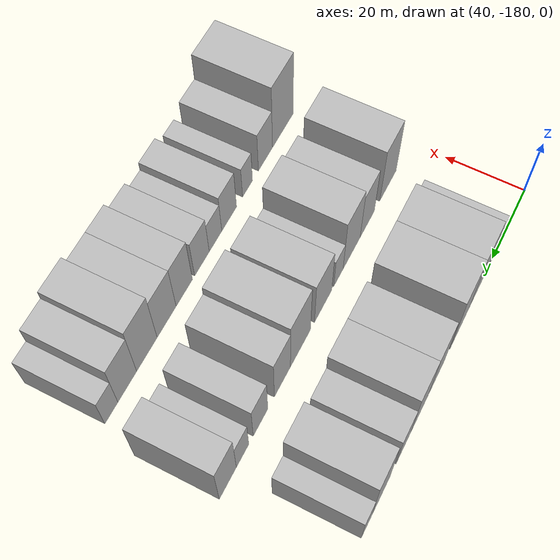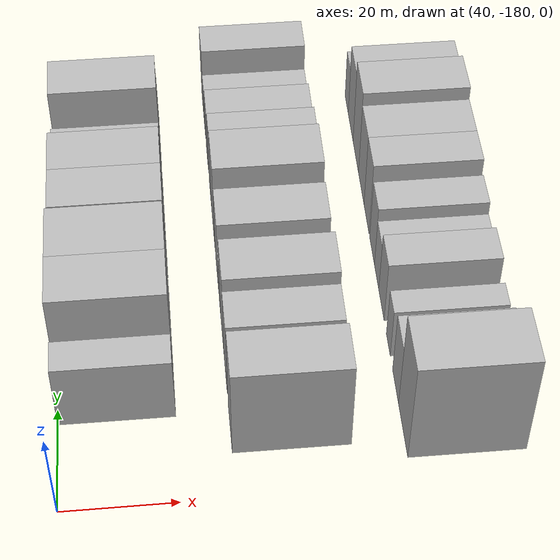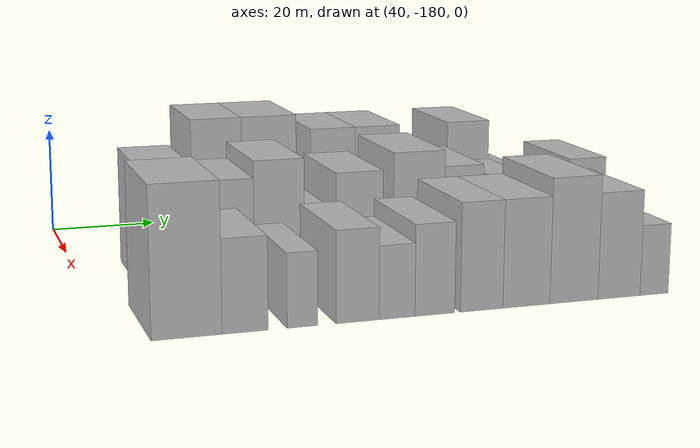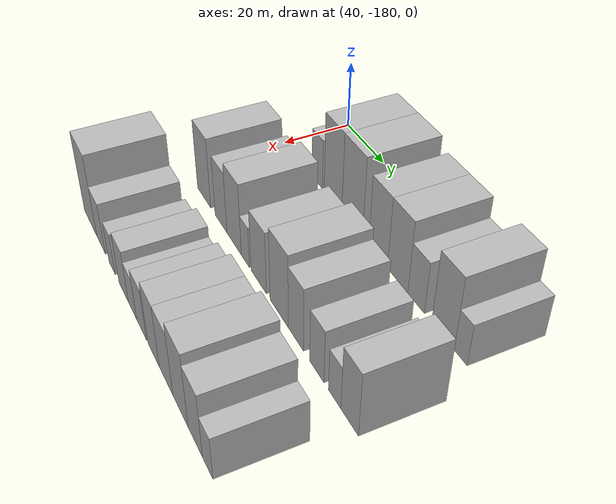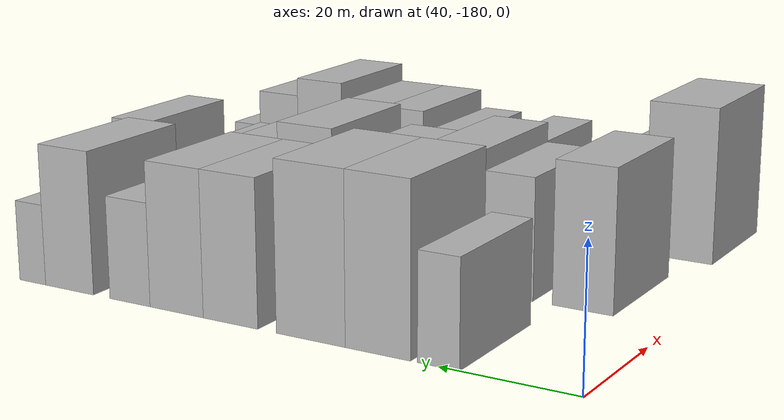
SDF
<sdf version="1.6">
 <world name="default">
  <model name="building_21">
   <static>1</static>
   <pose>50.0000 -159.9730 0 0.000000 0.000000 0.000000</pose>
   <link name="link">
    <pose>0 0 7.50 0 0 0</pose>
    <collision name="collision"><geometry><box><size>20.0000 6.0848 15.0000</size></box></geometry></collision>
    <visual name="visual">
     <cast_shadows>0</cast_shadows>
     <geometry><box><size>20.0000 6.0848 15.0000</size></box></geometry>
     <material>
      <script>
       <uri>model://HANNAS_wall/materials/scripts</uri>
       <uri>model://HANNAS_wall/materials/textures</uri>
       <name>vrc/HANNAS_wall</name>
      </script>
     </material>
    </visual>
   </link>
  </model>
  <model name="building_22">
   <static>1</static>
   <pose>50.0000 -151.0170 0 0.000000 0.000000 0.000000</pose>
   <link name="link">
    <pose>0 0 12.00 0 0 0</pose>
    <collision name="collision"><geometry><box><size>20.0000 9.8271 24.0000</size></box></geometry></collision>
    <visual name="visual">
     <cast_shadows>0</cast_shadows>
     <geometry><box><size>20.0000 9.8271 24.0000</size></box></geometry>
     <material>
      <script>
       <uri>model://HANNAS_wall/materials/scripts</uri>
       <uri>model://HANNAS_wall/materials/textures</uri>
       <name>vrc/HANNAS_wall</name>
      </script>
     </material>
    </visual>
   </link>
  </model>
  <model name="building_23">
   <static>1</static>
   <pose>50.0000 -140.6810 0 0.000000 0.000000 0.000000</pose>
   <link name="link">
    <pose>0 0 12.00 0 0 0</pose>
    <collision name="collision"><geometry><box><size>20.0000 10.8451 24.0000</size></box></geometry></collision>
    <visual name="visual">
     <cast_shadows>0</cast_shadows>
     <geometry><box><size>20.0000 10.8451 24.0000</size></box></geometry>
     <material>
      <script>
       <uri>model://HANNAS_wall/materials/scripts</uri>
       <uri>model://HANNAS_wall/materials/textures</uri>
       <name>vrc/HANNAS_wall</name>
      </script>
     </material>
    </visual>
   </link>
  </model>
  <model name="building_24">
   <static>1</static>
   <pose>50.0000 -127.7165 0 0.000000 0.000000 0.000000</pose>
   <link name="link">
    <pose>0 0 10.50 0 0 0</pose>
    <collision name="collision"><geometry><box><size>20.0000 9.0838 21.0000</size></box></geometry></collision>
    <visual name="visual">
     <cast_shadows>0</cast_shadows>
     <geometry><box><size>20.0000 9.0838 21.0000</size></box></geometry>
     <material>
      <script>
       <uri>model://HANNAS_wall/materials/scripts</uri>
       <uri>model://HANNAS_wall/materials/textures</uri>
       <name>vrc/HANNAS_wall</name>
      </script>
     </material>
    </visual>
   </link>
  </model>
  <model name="building_25">
   <static>1</static>
   <pose>50.0000 -118.5763 0 0.000000 0.000000 0.000000</pose>
   <link name="link">
    <pose>0 0 10.50 0 0 0</pose>
    <collision name="collision"><geometry><box><size>20.0000 9.1967 21.0000</size></box></geometry></collision>
    <visual name="visual">
     <cast_shadows>0</cast_shadows>
     <geometry><box><size>20.0000 9.1967 21.0000</size></box></geometry>
     <material>
      <script>
       <uri>model://HANNAS_wall/materials/scripts</uri>
       <uri>model://HANNAS_wall/materials/textures</uri>
       <name>vrc/HANNAS_wall</name>
      </script>
     </material>
    </visual>
   </link>
  </model>
  <model name="building_26">
   <static>1</static>
   <pose>50.0000 -110.3898 0 0.000000 0.000000 0.000000</pose>
   <link name="link">
    <pose>0 0 7.50 0 0 0</pose>
    <collision name="collision"><geometry><box><size>20.0000 7.1761 15.0000</size></box></geometry></collision>
    <visual name="visual">
     <cast_shadows>0</cast_shadows>
     <geometry><box><size>20.0000 7.1761 15.0000</size></box></geometry>
     <material>
      <script>
       <uri>model://HANNAS_wall/materials/scripts</uri>
       <uri>model://HANNAS_wall/materials/textures</uri>
       <name>vrc/HANNAS_wall</name>
      </script>
     </material>
    </visual>
   </link>
  </model>
  <model name="building_27">
   <static>1</static>
   <pose>50.0000 -99.3260 0 0.000000 0.000000 0.000000</pose>
   <link name="link">
    <pose>0 0 10.50 0 0 0</pose>
    <collision name="collision"><geometry><box><size>20.0000 8.9515 21.0000</size></box></geometry></collision>
    <visual name="visual">
     <cast_shadows>0</cast_shadows>
     <geometry><box><size>20.0000 8.9515 21.0000</size></box></geometry>
     <material>
      <script>
       <uri>model://HANNAS_wall/materials/scripts</uri>
       <uri>model://HANNAS_wall/materials/textures</uri>
       <name>vrc/HANNAS_wall</name>
      </script>
     </material>
    </visual>
   </link>
  </model>
  <model name="building_28">
   <static>1</static>
   <pose>50.0000 -92.3775 0 0.000000 0.000000 0.000000</pose>
   <link name="link">
    <pose>0 0 6.00 0 0 0</pose>
    <collision name="collision"><geometry><box><size>20.0000 4.9455 12.0000</size></box></geometry></collision>
    <visual name="visual">
     <cast_shadows>0</cast_shadows>
     <geometry><box><size>20.0000 4.9455 12.0000</size></box></geometry>
     <material>
      <script>
       <uri>model://HANNAS_wall/materials/scripts</uri>
       <uri>model://HANNAS_wall/materials/textures</uri>
       <name>vrc/HANNAS_wall</name>
      </script>
     </material>
    </visual>
   </link>
  </model>
  <model name="building_96">
   <static>1</static>
   <pose>79.0000 -166.5685 0 0.000000 0.000000 0.000000</pose>
   <link name="link">
    <pose>0 0 10.50 0 0 0</pose>
    <collision name="collision"><geometry><box><size>20.0000 9.2557 21.0000</size></box></geometry></collision>
    <visual name="visual">
     <cast_shadows>0</cast_shadows>
     <geometry><box><size>20.0000 9.2557 21.0000</size></box></geometry>
     <material>
      <script>
       <uri>model://HANNAS_wall/materials/scripts</uri>
       <uri>model://HANNAS_wall/materials/textures</uri>
       <name>vrc/HANNAS_wall</name>
      </script>
     </material>
    </visual>
   </link>
  </model>
  <model name="building_97">
   <static>1</static>
   <pose>79.0000 -155.0542 0 0.000000 0.000000 0.000000</pose>
   <link name="link">
    <pose>0 0 9.00 0 0 0</pose>
    <collision name="collision"><geometry><box><size>20.0000 7.7730 18.0000</size></box></geometry></collision>
    <visual name="visual">
     <cast_shadows>0</cast_shadows>
     <geometry><box><size>20.0000 7.7730 18.0000</size></box></geometry>
     <material>
      <script>
       <uri>model://HANNAS_wall/materials/scripts</uri>
       <uri>model://HANNAS_wall/materials/textures</uri>
       <name>vrc/HANNAS_wall</name>
      </script>
     </material>
    </visual>
   </link>
  </model>
  <model name="building_98">
   <static>1</static>
   <pose>79.0000 -146.6459 0 0.000000 0.000000 0.000000</pose>
   <link name="link">
    <pose>0 0 10.50 0 0 0</pose>
    <collision name="collision"><geometry><box><size>20.0000 9.0435 21.0000</size></box></geometry></collision>
    <visual name="visual">
     <cast_shadows>0</cast_shadows>
     <geometry><box><size>20.0000 9.0435 21.0000</size></box></geometry>
     <material>
      <script>
       <uri>model://HANNAS_wall/materials/scripts</uri>
       <uri>model://HANNAS_wall/materials/textures</uri>
       <name>vrc/HANNAS_wall</name>
      </script>
     </material>
    </visual>
   </link>
  </model>
  <model name="building_99">
   <static>1</static>
   <pose>79.0000 -139.7184 0 0.000000 0.000000 0.000000</pose>
   <link name="link">
    <pose>0 0 6.00 0 0 0</pose>
    <collision name="collision"><geometry><box><size>20.0000 4.8115 12.0000</size></box></geometry></collision>
    <visual name="visual">
     <cast_shadows>0</cast_shadows>
     <geometry><box><size>20.0000 4.8115 12.0000</size></box></geometry>
     <material>
      <script>
       <uri>model://HANNAS_wall/materials/scripts</uri>
       <uri>model://HANNAS_wall/materials/textures</uri>
       <name>vrc/HANNAS_wall</name>
      </script>
     </material>
    </visual>
   </link>
  </model>
  <model name="building_100">
   <static>1</static>
   <pose>79.0000 -131.9504 0 0.000000 0.000000 0.000000</pose>
   <link name="link">
    <pose>0 0 9.00 0 0 0</pose>
    <collision name="collision"><geometry><box><size>20.0000 8.7246 18.0000</size></box></geometry></collision>
    <visual name="visual">
     <cast_shadows>0</cast_shadows>
     <geometry><box><size>20.0000 8.7246 18.0000</size></box></geometry>
     <material>
      <script>
       <uri>model://HANNAS_wall/materials/scripts</uri>
       <uri>model://HANNAS_wall/materials/textures</uri>
       <name>vrc/HANNAS_wall</name>
      </script>
     </material>
    </visual>
   </link>
  </model>
  <model name="building_101">
   <static>1</static>
   <pose>79.0000 -120.7301 0 0.000000 0.000000 0.000000</pose>
   <link name="link">
    <pose>0 0 10.50 0 0 0</pose>
    <collision name="collision"><geometry><box><size>20.0000 9.7162 21.0000</size></box></geometry></collision>
    <visual name="visual">
     <cast_shadows>0</cast_shadows>
     <geometry><box><size>20.0000 9.7162 21.0000</size></box></geometry>
     <material>
      <script>
       <uri>model://HANNAS_wall/materials/scripts</uri>
       <uri>model://HANNAS_wall/materials/textures</uri>
       <name>vrc/HANNAS_wall</name>
      </script>
     </material>
    </visual>
   </link>
  </model>
  <model name="building_102">
   <static>1</static>
   <pose>79.0000 -112.0959 0 0.000000 0.000000 0.000000</pose>
   <link name="link">
    <pose>0 0 9.00 0 0 0</pose>
    <collision name="collision"><geometry><box><size>20.0000 7.5521 18.0000</size></box></geometry></collision>
    <visual name="visual">
     <cast_shadows>0</cast_shadows>
     <geometry><box><size>20.0000 7.5521 18.0000</size></box></geometry>
     <material>
      <script>
       <uri>model://HANNAS_wall/materials/scripts</uri>
       <uri>model://HANNAS_wall/materials/textures</uri>
       <name>vrc/HANNAS_wall</name>
      </script>
     </material>
    </visual>
   </link>
  </model>
  <model name="building_103">
   <static>1</static>
   <pose>79.0000 -102.0207 0 0.000000 0.000000 0.000000</pose>
   <link name="link">
    <pose>0 0 7.50 0 0 0</pose>
    <collision name="collision"><geometry><box><size>20.0000 6.5983 15.0000</size></box></geometry></collision>
    <visual name="visual">
     <cast_shadows>0</cast_shadows>
     <geometry><box><size>20.0000 6.5983 15.0000</size></box></geometry>
     <material>
      <script>
       <uri>model://HANNAS_wall/materials/scripts</uri>
       <uri>model://HANNAS_wall/materials/textures</uri>
       <name>vrc/HANNAS_wall</name>
      </script>
     </material>
    </visual>
   </link>
  </model>
  <model name="building_104">
   <static>1</static>
   <pose>79.0000 -93.9938 0 0.000000 0.000000 0.000000</pose>
   <link name="link">
    <pose>0 0 6.00 0 0 0</pose>
    <collision name="collision"><geometry><box><size>20.0000 5.4555 12.0000</size></box></geometry></collision>
    <visual name="visual">
     <cast_shadows>0</cast_shadows>
     <geometry><box><size>20.0000 5.4555 12.0000</size></box></geometry>
     <material>
      <script>
       <uri>model://HANNAS_wall/materials/scripts</uri>
       <uri>model://HANNAS_wall/materials/textures</uri>
       <name>vrc/HANNAS_wall</name>
      </script>
     </material>
    </visual>
   </link>
  </model>
  <model name="building_105">
   <static>1</static>
   <pose>79.0000 -87.5949 0 0.000000 0.000000 0.000000</pose>
   <link name="link">
    <pose>0 0 9.00 0 0 0</pose>
    <collision name="collision"><geometry><box><size>20.0000 7.3423 18.0000</size></box></geometry></collision>
    <visual name="visual">
     <cast_shadows>0</cast_shadows>
     <geometry><box><size>20.0000 7.3423 18.0000</size></box></geometry>
     <material>
      <script>
       <uri>model://HANNAS_wall/materials/scripts</uri>
       <uri>model://HANNAS_wall/materials/textures</uri>
       <name>vrc/HANNAS_wall</name>
      </script>
     </material>
    </visual>
   </link>
  </model>
  <model name="building_174">
   <static>1</static>
   <pose>108.0000 -169.1698 0 0.000000 0.000000 0.000000</pose>
   <link name="link">
    <pose>0 0 12.00 0 0 0</pose>
    <collision name="collision"><geometry><box><size>20.0000 10.9293 24.0000</size></box></geometry></collision>
    <visual name="visual">
     <cast_shadows>0</cast_shadows>
     <geometry><box><size>20.0000 10.9293 24.0000</size></box></geometry>
     <material>
      <script>
       <uri>model://HANNAS_wall/materials/scripts</uri>
       <uri>model://HANNAS_wall/materials/textures</uri>
       <name>vrc/HANNAS_wall</name>
      </script>
     </material>
    </visual>
   </link>
  </model>
  <model name="building_175">
   <static>1</static>
   <pose>108.0000 -160.0708 0 0.000000 0.000000 0.000000</pose>
   <link name="link">
    <pose>0 0 7.50 0 0 0</pose>
    <collision name="collision"><geometry><box><size>20.0000 7.2686 15.0000</size></box></geometry></collision>
    <visual name="visual">
     <cast_shadows>0</cast_shadows>
     <geometry><box><size>20.0000 7.2686 15.0000</size></box></geometry>
     <material>
      <script>
       <uri>model://HANNAS_wall/materials/scripts</uri>
       <uri>model://HANNAS_wall/materials/textures</uri>
       <name>vrc/HANNAS_wall</name>
      </script>
     </material>
    </visual>
   </link>
  </model>
  <model name="building_176">
   <static>1</static>
   <pose>108.0000 -150.9664 0 0.000000 0.000000 0.000000</pose>
   <link name="link">
    <pose>0 0 6.00 0 0 0</pose>
    <collision name="collision"><geometry><box><size>20.0000 4.9401 12.0000</size></box></geometry></collision>
    <visual name="visual">
     <cast_shadows>0</cast_shadows>
     <geometry><box><size>20.0000 4.9401 12.0000</size></box></geometry>
     <material>
      <script>
       <uri>model://HANNAS_wall/materials/scripts</uri>
       <uri>model://HANNAS_wall/materials/textures</uri>
       <name>vrc/HANNAS_wall</name>
      </script>
     </material>
    </visual>
   </link>
  </model>
  <model name="building_177">
   <static>1</static>
   <pose>108.0000 -141.9203 0 0.000000 0.000000 0.000000</pose>
   <link name="link">
    <pose>0 0 7.50 0 0 0</pose>
    <collision name="collision"><geometry><box><size>20.0000 7.1522 15.0000</size></box></geometry></collision>
    <visual name="visual">
     <cast_shadows>0</cast_shadows>
     <geometry><box><size>20.0000 7.1522 15.0000</size></box></geometry>
     <material>
      <script>
       <uri>model://HANNAS_wall/materials/scripts</uri>
       <uri>model://HANNAS_wall/materials/textures</uri>
       <name>vrc/HANNAS_wall</name>
      </script>
     </material>
    </visual>
   </link>
  </model>
  <model name="building_178">
   <static>1</static>
   <pose>108.0000 -135.3606 0 0.000000 0.000000 0.000000</pose>
   <link name="link">
    <pose>0 0 6.00 0 0 0</pose>
    <collision name="collision"><geometry><box><size>20.0000 5.9671 12.0000</size></box></geometry></collision>
    <visual name="visual">
     <cast_shadows>0</cast_shadows>
     <geometry><box><size>20.0000 5.9671 12.0000</size></box></geometry>
     <material>
      <script>
       <uri>model://HANNAS_wall/materials/scripts</uri>
       <uri>model://HANNAS_wall/materials/textures</uri>
       <name>vrc/HANNAS_wall</name>
      </script>
     </material>
    </visual>
   </link>
  </model>
  <model name="building_179">
   <static>1</static>
   <pose>108.0000 -128.9719 0 0.000000 0.000000 0.000000</pose>
   <link name="link">
    <pose>0 0 7.50 0 0 0</pose>
    <collision name="collision"><geometry><box><size>20.0000 6.8103 15.0000</size></box></geometry></collision>
    <visual name="visual">
     <cast_shadows>0</cast_shadows>
     <geometry><box><size>20.0000 6.8103 15.0000</size></box></geometry>
     <material>
      <script>
       <uri>model://HANNAS_wall/materials/scripts</uri>
       <uri>model://HANNAS_wall/materials/textures</uri>
       <name>vrc/HANNAS_wall</name>
      </script>
     </material>
    </visual>
   </link>
  </model>
  <model name="building_180">
   <static>1</static>
   <pose>108.0000 -120.8729 0 0.000000 0.000000 0.000000</pose>
   <link name="link">
    <pose>0 0 9.00 0 0 0</pose>
    <collision name="collision"><geometry><box><size>20.0000 7.3879 18.0000</size></box></geometry></collision>
    <visual name="visual">
     <cast_shadows>0</cast_shadows>
     <geometry><box><size>20.0000 7.3879 18.0000</size></box></geometry>
     <material>
      <script>
       <uri>model://HANNAS_wall/materials/scripts</uri>
       <uri>model://HANNAS_wall/materials/textures</uri>
       <name>vrc/HANNAS_wall</name>
      </script>
     </material>
    </visual>
   </link>
  </model>
  <model name="building_181">
   <static>1</static>
   <pose>108.0000 -112.9927 0 0.000000 0.000000 0.000000</pose>
   <link name="link">
    <pose>0 0 9.00 0 0 0</pose>
    <collision name="collision"><geometry><box><size>20.0000 8.3724 18.0000</size></box></geometry></collision>
    <visual name="visual">
     <cast_shadows>0</cast_shadows>
     <geometry><box><size>20.0000 8.3724 18.0000</size></box></geometry>
     <material>
      <script>
       <uri>model://HANNAS_wall/materials/scripts</uri>
       <uri>model://HANNAS_wall/materials/textures</uri>
       <name>vrc/HANNAS_wall</name>
      </script>
     </material>
    </visual>
   </link>
  </model>
  <model name="building_182">
   <static>1</static>
   <pose>108.0000 -104.4354 0 0.000000 0.000000 0.000000</pose>
   <link name="link">
    <pose>0 0 10.50 0 0 0</pose>
    <collision name="collision"><geometry><box><size>20.0000 8.7422 21.0000</size></box></geometry></collision>
    <visual name="visual">
     <cast_shadows>0</cast_shadows>
     <geometry><box><size>20.0000 8.7422 21.0000</size></box></geometry>
     <material>
      <script>
       <uri>model://HANNAS_wall/materials/scripts</uri>
       <uri>model://HANNAS_wall/materials/textures</uri>
       <name>vrc/HANNAS_wall</name>
      </script>
     </material>
    </visual>
   </link>
  </model>
  <model name="building_183">
   <static>1</static>
   <pose>108.0000 -96.1667 0 0.000000 0.000000 0.000000</pose>
   <link name="link">
    <pose>0 0 9.00 0 0 0</pose>
    <collision name="collision"><geometry><box><size>20.0000 7.7953 18.0000</size></box></geometry></collision>
    <visual name="visual">
     <cast_shadows>0</cast_shadows>
     <geometry><box><size>20.0000 7.7953 18.0000</size></box></geometry>
     <material>
      <script>
       <uri>model://HANNAS_wall/materials/scripts</uri>
       <uri>model://HANNAS_wall/materials/textures</uri>
       <name>vrc/HANNAS_wall</name>
      </script>
     </material>
    </visual>
   </link>
  </model>
  <model name="building_184">
   <static>1</static>
   <pose>108.0000 -89.6130 0 0.000000 0.000000 0.000000</pose>
   <link name="link">
    <pose>0 0 6.00 0 0 0</pose>
    <collision name="collision"><geometry><box><size>20.0000 5.3121 12.0000</size></box></geometry></collision>
    <visual name="visual">
     <cast_shadows>0</cast_shadows>
     <geometry><box><size>20.0000 5.3121 12.0000</size></box></geometry>
     <material>
      <script>
       <uri>model://HANNAS_wall/materials/scripts</uri>
       <uri>model://HANNAS_wall/materials/textures</uri>
       <name>vrc/HANNAS_wall</name>
      </script>
     </material>
    </visual>
   </link>
  </model>
 </world>
</sdf>
